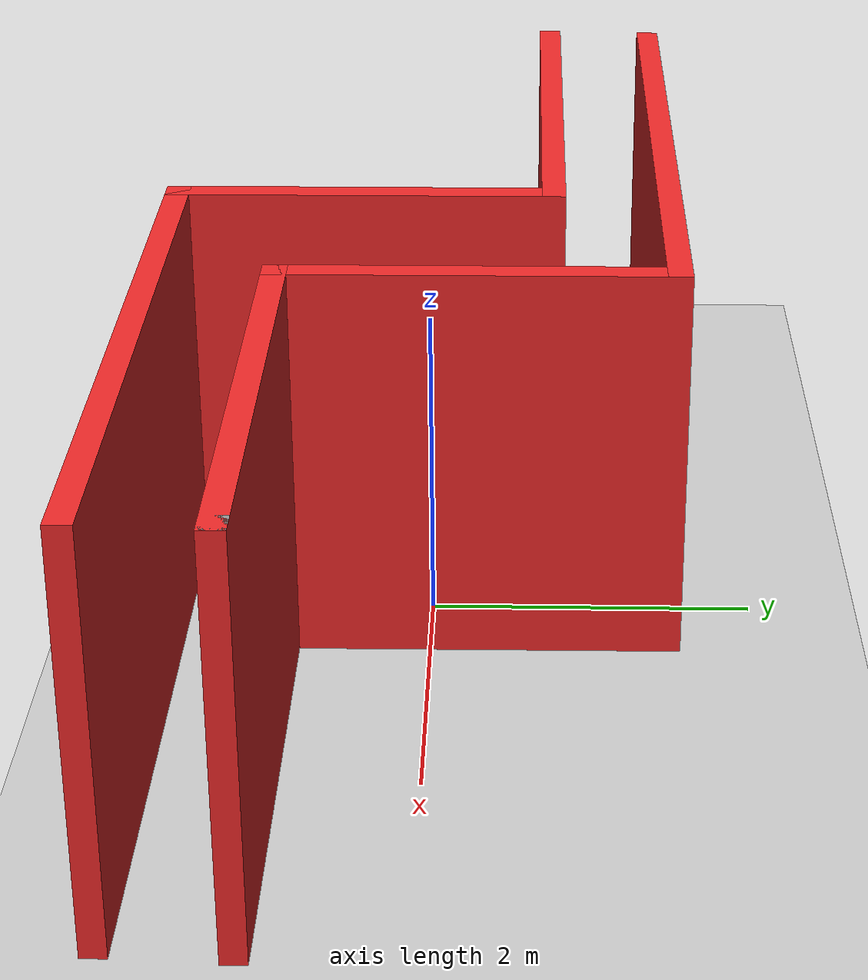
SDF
<sdf version="1.7">
 <world name="default">
  <light name="sun" type="directional">
   <pose>0 0 10 0 -0 0</pose>
   <diffuse>0.8 0.8 0.8 1</diffuse>
   <specular>0.2 0.2 0.2 1</specular>
   <attenuation>
    <range>1000</range>
    <constant>0.9</constant>
    <linear>0.01</linear>
    <quadratic>0.001</quadratic>
   </attenuation>
   <direction>-0.5 0.1 -0.9</direction>
   <spot><inner_angle>0</inner_angle><outer_angle>0</outer_angle><falloff>0</falloff></spot>
  </light>
  <model name="ground_plane">
   <static>1</static>
   <link name="link">
    <collision name="collision">
     <geometry><plane><normal>0 0 1</normal><size>100 100</size></plane></geometry>
     <surface>
      <contact><collide_bitmask>65535</collide_bitmask></contact>
      <friction><ode><mu>100</mu><mu2>50</mu2></ode></friction>
     </surface>
    </collision>
    <visual name="visual">
     <cast_shadows>0</cast_shadows>
     <geometry><plane><normal>0 0 1</normal><size>100 100</size></plane></geometry>
     <material>
      <script><uri>file://media/materials/scripts/gazebo.material</uri><name>Gazebo/Grey</name></script>
     </material>
    </visual>
   </link>
  </model>
  <gravity>0 0 -9.8</gravity>
  <magnetic_field>6e-06 2.3e-05 -4.2e-05</magnetic_field>
  <atmosphere type="adiabatic"/>
  <physics type="ode">
   <max_step_size>0.001</max_step_size>
   <real_time_factor>1</real_time_factor>
   <real_time_update_rate>1000</real_time_update_rate>
  </physics>
  <scene><ambient>0.4 0.4 0.4 1</ambient><background>0.7 0.7 0.7 1</background><shadows>1</shadows></scene>
  <spherical_coordinates>
   <surface_model>EARTH_WGS84</surface_model>
   <latitude_deg>0</latitude_deg>
   <longitude_deg>0</longitude_deg>
   <elevation>0</elevation>
   <heading_deg>0</heading_deg>
  </spherical_coordinates>
  <model name="simulated—walking">
   <pose>-0.318122 0.391765 0 0 -0 0</pose>
   <link name="Wall_1">
    <collision name="Wall_1_Collision">
     <geometry><box><size>4.75 0.15 2.5</size></box></geometry>
     <pose>0 0 1.25 0 -0 0</pose>
    </collision>
    <visual name="Wall_1_Visual">
     <pose>0 0 1.25 0 -0 0</pose>
     <geometry><box><size>4.75 0.15 2.5</size></box></geometry>
     <material>
      <script><uri>file://media/materials/scripts/gazebo.material</uri><name>Gazebo/Grey</name></script>
      <ambient>0.937255 0.160784 0.160784 1</ambient>
     </material>
     <meta><layer>0</layer></meta>
    </visual>
    <pose>-1.53 1.0725 0 0 -0 0</pose>
   </link>
   <link name="Wall_2">
    <collision name="Wall_2_Collision">
     <geometry><box><size>2.5 0.15 2.5</size></box></geometry>
     <pose>0 0 1.25 0 -0 0</pose>
    </collision>
    <visual name="Wall_2_Visual">
     <pose>0 0 1.25 0 -0 0</pose>
     <geometry><box><size>2.5 0.15 2.5</size></box></geometry>
     <material>
      <script><uri>file://media/materials/scripts/gazebo.material</uri><name>Gazebo/Grey</name></script>
      <ambient>0.937255 0.160784 0.160784 1</ambient>
     </material>
     <meta><layer>0</layer></meta>
    </visual>
    <pose>0.77 -0.1025 0 0 -0 -1.5708</pose>
   </link>
   <link name="Wall_3">
    <collision name="Wall_3_Collision">
     <geometry><box><size>3.25 0.15 2.5</size></box></geometry>
     <pose>0 0 1.25 0 -0 0</pose>
    </collision>
    <visual name="Wall_3_Visual">
     <pose>0 0 1.25 0 -0 0</pose>
     <geometry><box><size>3.25 0.15 2.5</size></box></geometry>
     <material>
      <script><uri>file://media/materials/scripts/gazebo.material</uri><name>Gazebo/Grey</name></script>
      <ambient>0.937255 0.160784 0.160784 1</ambient>
     </material>
     <meta><layer>0</layer></meta>
    </visual>
    <pose>2.32 -1.2775 0 0 -0 0</pose>
   </link>
   <link name="Wall_4">
    <collision name="Wall_4_Collision">
     <geometry><box><size>0.15 0.15 2.5</size></box></geometry>
     <pose>0 0 1.25 0 -0 0</pose>
    </collision>
    <visual name="Wall_4_Visual">
     <pose>0 0 1.25 0 -0 0</pose>
     <geometry><box><size>0.15 0.15 2.5</size></box></geometry>
     <material>
      <script><uri>file://media/materials/scripts/gazebo.material</uri><name>Gazebo/Grey</name></script>
      <ambient>1 1 1 1</ambient>
     </material>
     <meta><layer>0</layer></meta>
    </visual>
    <pose>3.87 -1.2775 0 0 -0 0</pose>
   </link>
   <link name="Wall_5">
    <collision name="Wall_5_Collision">
     <geometry><box><size>0.15 0.15 2.5</size></box></geometry>
     <pose>0 0 1.25 0 -0 0</pose>
    </collision>
    <visual name="Wall_5_Visual">
     <pose>0 0 1.25 0 -0 0</pose>
     <geometry><box><size>0.15 0.15 2.5</size></box></geometry>
     <material>
      <script><uri>file://media/materials/scripts/gazebo.material</uri><name>Gazebo/Grey</name></script>
      <ambient>1 1 1 1</ambient>
     </material>
     <meta><layer>0</layer></meta>
    </visual>
    <pose>3.87 -1.2775 0 0 -0 0</pose>
   </link>
   <link name="Wall_7">
    <collision name="Wall_7_Collision">
     <geometry><box><size>3.5 0.15 2.5</size></box></geometry>
     <pose>0 0 1.25 0 -0 0</pose>
    </collision>
    <visual name="Wall_7_Visual">
     <pose>0 0 1.25 0 -0 0</pose>
     <geometry><box><size>3.5 0.15 2.5</size></box></geometry>
     <material>
      <script><uri>file://media/materials/scripts/gazebo.material</uri><name>Gazebo/Grey</name></script>
      <ambient>0.937255 0.160784 0.160784 1</ambient>
     </material>
     <meta><layer>0</layer></meta>
    </visual>
    <pose>-2.195 0.3525 0 0 -0 0</pose>
   </link>
   <link name="Wall_8">
    <collision name="Wall_8_Collision">
     <geometry><box><size>2.5 0.15 2.5</size></box></geometry>
     <pose>0 0 1.25 0 -0 0</pose>
    </collision>
    <visual name="Wall_8_Visual">
     <pose>0 0 1.25 0 -0 0</pose>
     <geometry><box><size>2.5 0.15 2.5</size></box></geometry>
     <material>
      <script><uri>file://media/materials/scripts/gazebo.material</uri><name>Gazebo/Grey</name></script>
      <ambient>0.937255 0.160784 0.160784 1</ambient>
     </material>
     <meta><layer>0</layer></meta>
    </visual>
    <pose>-0.52 -0.8225 0 0 -0 -1.5708</pose>
   </link>
   <link name="Wall_9">
    <collision name="Wall_9_Collision">
     <geometry><box><size>4.5 0.15 2.5</size></box></geometry>
     <pose>0 0 1.25 0 -0 0</pose>
    </collision>
    <visual name="Wall_9_Visual">
     <pose>0 0 1.25 0 -0 0</pose>
     <geometry><box><size>4.5 0.15 2.5</size></box></geometry>
     <material>
      <script><uri>file://media/materials/scripts/gazebo.material</uri><name>Gazebo/Grey</name></script>
      <ambient>0.937255 0.160784 0.160784 1</ambient>
     </material>
     <meta><layer>0</layer></meta>
    </visual>
    <pose>1.655 -1.9975 0 0 -0 0</pose>
   </link>
   <static>1</static>
  </model>
 </world>
</sdf>
